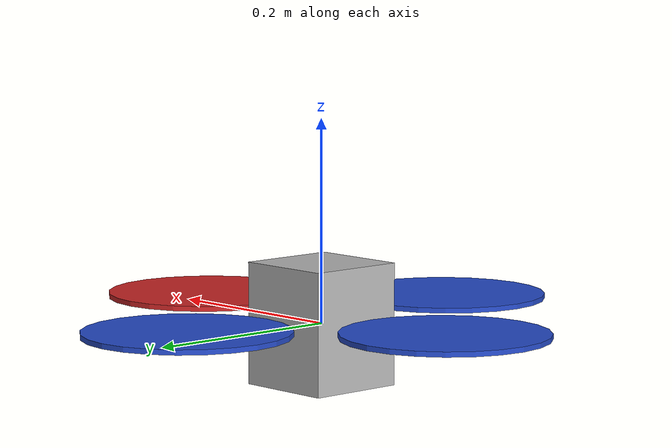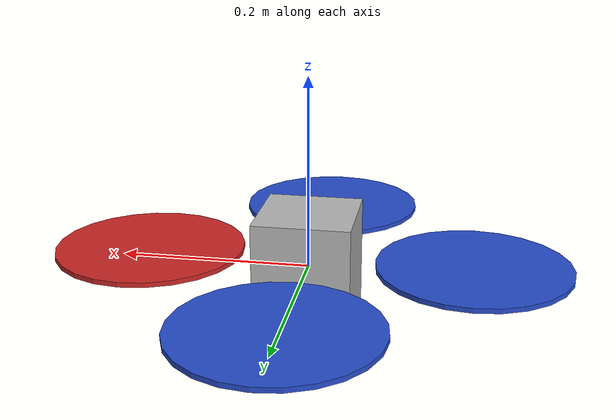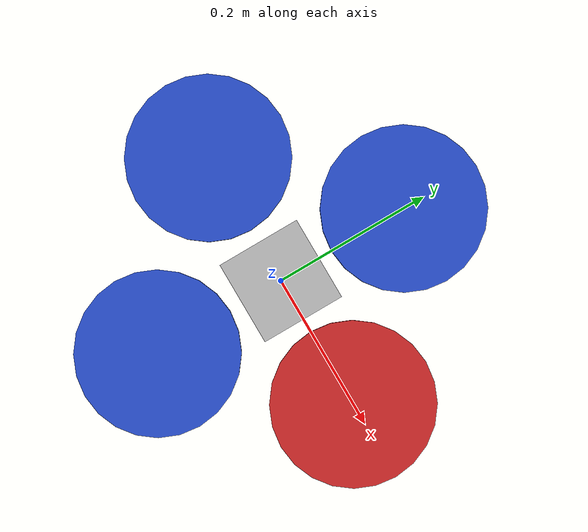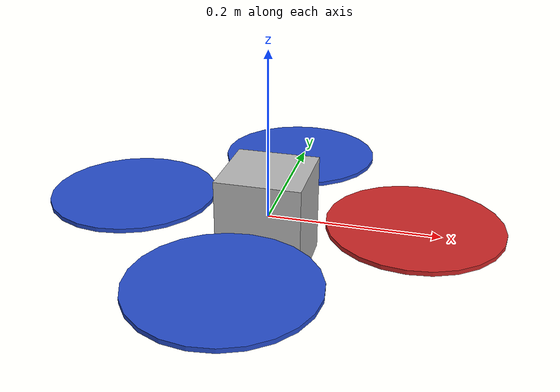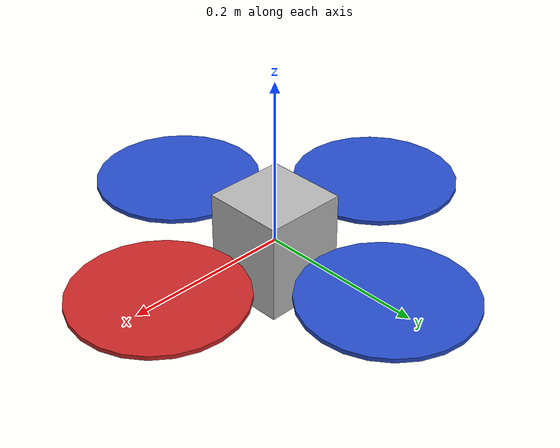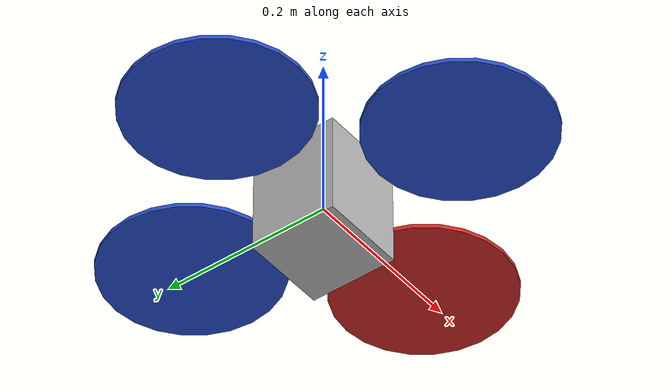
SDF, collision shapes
<sdf version='1.7'>
  <model name='hummingbird'>
    <link name='hummingbird/base_link'>
      <inertial>
        <pose>0 0 0 0 -0 0</pose>
        <mass>0.68</mass>
        <inertia>
          <ixx>0.007</ixx>
          <ixy>0</ixy>
          <ixz>0</ixz>
          <iyy>0.007</iyy>
          <iyz>0</iyz>
          <izz>0.012</izz>
        </inertia>
      </inertial>
      <collision name='hummingbird/base_link_inertia_collision'>
        <pose>0 0 0 0 -0 0</pose>
        <geometry>
          <box>
            <size>0.1 0.1 0.12</size>
          </box>
        </geometry>
      </collision>
      <visual name='hummingbird/base_link_inertia_visual'>
        <pose>0 0 0 0 -0 0</pose>
        <geometry>
          <mesh>
            <scale>1 1 1</scale>
            <uri>model://hummingbird/meshes/hummingbird.dae</uri>
          </mesh>
        </geometry>
      </visual>
    </link>
    <joint name='hummingbird/imu_joint' type='revolute'>
      <pose relative_to='hummingbird/base_link'>0 0 0 0 -0 0</pose>
      <parent>hummingbird/base_link</parent>
      <child>hummingbird/imu_link</child>
      <axis>
        <xyz>1 0 0</xyz>
        <limit>
          <lower>0</lower>
          <upper>0</upper>
          <effort>0</effort>
          <velocity>0</velocity>
        </limit>
        <dynamics>
          <spring_reference>0</spring_reference>
          <spring_stiffness>0</spring_stiffness>
        </dynamics>
      </axis>
    </joint>
    <link name='hummingbird/imu_link'>
      <pose relative_to='hummingbird/imu_joint'>0 0 0 0 -0 0</pose>
      <inertial>
        <pose>0 0 0 0 -0 0</pose>
        <mass>0.015</mass>
        <inertia>
          <ixx>1e-05</ixx>
          <ixy>0</ixy>
          <ixz>0</ixz>
          <iyy>1e-05</iyy>
          <iyz>0</iyz>
          <izz>1e-05</izz>
        </inertia>
      </inertial>
    </link>
    <joint name='hummingbird/rotor_0_joint' type='revolute'>
      <pose relative_to='hummingbird/base_link'>0.17 0 0.01 0 -0 0</pose>
      <parent>hummingbird/base_link</parent>
      <child>hummingbird/rotor_0</child>
      <axis>
        <xyz>0 0 1</xyz>
        <limit>
          <lower>-1e+16</lower>
          <upper>1e+16</upper>
        </limit>
        <dynamics>
          <spring_reference>0</spring_reference>
          <spring_stiffness>0</spring_stiffness>
        </dynamics>
      </axis>
    </joint>
    <link name='hummingbird/rotor_0'>
      <pose relative_to='hummingbird/rotor_0_joint'>0 0 0 0 -0 0</pose>
      <inertial>
        <pose>0 0 0 0 -0 0</pose>
        <mass>0.009</mass>
        <inertia>
          <ixx>1.755e-06</ixx>
          <ixy>0</ixy>
          <ixz>0</ixz>
          <iyy>7.50675e-05</iyy>
          <iyz>0</iyz>
          <izz>7.66875e-05</izz>
        </inertia>
      </inertial>
      <collision name='hummingbird/rotor_0_collision'>
        <pose>0 0 0 0 -0 0</pose>
        <geometry>
          <cylinder>
            <length>0.005</length>
            <radius>0.1</radius>
          </cylinder>
        </geometry>
        <surface>
          <contact>
            <ode/>
          </contact>
          <friction>
            <ode/>
          </friction>
        </surface>
      </collision>
      <visual name='hummingbird/rotor_0_visual'>
        <pose>0 0 0 0 -0 0</pose>
        <geometry>
          <mesh>
            <scale>0.1 0.1 0.1</scale>
            <uri>model://hummingbird/meshes/propeller_cw.dae</uri>
          </mesh>
        </geometry>
        <material>
          <script>
            <name>Gazebo/Red</name>
            <uri>file://media/materials/scripts/gazebo.material</uri>
          </script>
        </material>
      </visual>
    </link>
    <joint name='hummingbird/rotor_1_joint' type='revolute'>
      <pose relative_to='hummingbird/base_link'>0 0.17 0.01 0 -0 0</pose>
      <parent>hummingbird/base_link</parent>
      <child>hummingbird/rotor_1</child>
      <axis>
        <xyz>0 0 1</xyz>
        <limit>
          <lower>-1e+16</lower>
          <upper>1e+16</upper>
        </limit>
        <dynamics>
          <spring_reference>0</spring_reference>
          <spring_stiffness>0</spring_stiffness>
        </dynamics>
      </axis>
    </joint>
    <link name='hummingbird/rotor_1'>
      <pose relative_to='hummingbird/rotor_1_joint'>0 0 0 0 -0 0</pose>
      <inertial>
        <pose>0 0 0 0 -0 0</pose>
        <mass>0.009</mass>
        <inertia>
          <ixx>1.755e-06</ixx>
          <ixy>0</ixy>
          <ixz>0</ixz>
          <iyy>7.50675e-05</iyy>
          <iyz>0</iyz>
          <izz>7.66875e-05</izz>
        </inertia>
      </inertial>
      <collision name='hummingbird/rotor_1_collision'>
        <pose>0 0 0 0 -0 0</pose>
        <geometry>
          <cylinder>
            <length>0.005</length>
            <radius>0.1</radius>
          </cylinder>
        </geometry>
        <surface>
          <contact>
            <ode/>
          </contact>
          <friction>
            <ode/>
          </friction>
        </surface>
      </collision>
      <visual name='hummingbird/rotor_1_visual'>
        <pose>0 0 0 0 -0 0</pose>
        <geometry>
          <mesh>
            <scale>0.1 0.1 0.1</scale>
            <uri>model://hummingbird/meshes/propeller_ccw.dae</uri>
          </mesh>
        </geometry>
        <material>
          <script>
            <name>Gazebo/Blue</name>
            <uri>file://media/materials/scripts/gazebo.material</uri>
          </script>
        </material>
      </visual>
    </link>
    <joint name='hummingbird/rotor_2_joint' type='revolute'>
      <pose relative_to='hummingbird/base_link'>-0.17 0 0.01 0 -0 0</pose>
      <parent>hummingbird/base_link</parent>
      <child>hummingbird/rotor_2</child>
      <axis>
        <xyz>0 0 1</xyz>
        <limit>
          <lower>-1e+16</lower>
          <upper>1e+16</upper>
        </limit>
        <dynamics>
          <spring_reference>0</spring_reference>
          <spring_stiffness>0</spring_stiffness>
        </dynamics>
      </axis>
    </joint>
    <link name='hummingbird/rotor_2'>
      <pose relative_to='hummingbird/rotor_2_joint'>0 0 0 0 -0 0</pose>
      <inertial>
        <pose>0 0 0 0 -0 0</pose>
        <mass>0.009</mass>
        <inertia>
          <ixx>1.755e-06</ixx>
          <ixy>0</ixy>
          <ixz>0</ixz>
          <iyy>7.50675e-05</iyy>
          <iyz>0</iyz>
          <izz>7.66875e-05</izz>
        </inertia>
      </inertial>
      <collision name='hummingbird/rotor_2_collision'>
        <pose>0 0 0 0 -0 0</pose>
        <geometry>
          <cylinder>
            <length>0.005</length>
            <radius>0.1</radius>
          </cylinder>
        </geometry>
        <surface>
          <contact>
            <ode/>
          </contact>
          <friction>
            <ode/>
          </friction>
        </surface>
      </collision>
      <visual name='hummingbird/rotor_2_visual'>
        <pose>0 0 0 0 -0 0</pose>
        <geometry>
          <mesh>
            <scale>0.1 0.1 0.1</scale>
            <uri>model://hummingbird/meshes/propeller_cw.dae</uri>
          </mesh>
        </geometry>
        <material>
          <script>
            <name>Gazebo/Blue</name>
            <uri>file://media/materials/scripts/gazebo.material</uri>
          </script>
        </material>
      </visual>
    </link>
    <joint name='hummingbird/rotor_3_joint' type='revolute'>
      <pose relative_to='hummingbird/base_link'>0 -0.17 0.01 0 -0 0</pose>
      <parent>hummingbird/base_link</parent>
      <child>hummingbird/rotor_3</child>
      <axis>
        <xyz>0 0 1</xyz>
        <limit>
          <lower>-1e+16</lower>
          <upper>1e+16</upper>
        </limit>
        <dynamics>
          <spring_reference>0</spring_reference>
          <spring_stiffness>0</spring_stiffness>
        </dynamics>
      </axis>
    </joint>
    <link name='hummingbird/rotor_3'>
      <pose relative_to='hummingbird/rotor_3_joint'>0 0 0 0 -0 0</pose>
      <inertial>
        <pose>0 0 0 0 -0 0</pose>
        <mass>0.009</mass>
        <inertia>
          <ixx>1.755e-06</ixx>
          <ixy>0</ixy>
          <ixz>0</ixz>
          <iyy>7.50675e-05</iyy>
          <iyz>0</iyz>
          <izz>7.66875e-05</izz>
        </inertia>
      </inertial>
      <collision name='hummingbird/rotor_3_collision'>
        <pose>0 0 0 0 -0 0</pose>
        <geometry>
          <cylinder>
            <length>0.005</length>
            <radius>0.1</radius>
          </cylinder>
        </geometry>
        <surface>
          <contact>
            <ode/>
          </contact>
          <friction>
            <ode/>
          </friction>
        </surface>
      </collision>
      <visual name='hummingbird/rotor_3_visual'>
        <pose>0 0 0 0 -0 0</pose>
        <geometry>
          <mesh>
            <scale>0.1 0.1 0.1</scale>
            <uri>model://hummingbird/meshes/propeller_ccw.dae</uri>
          </mesh>
        </geometry>
        <material>
          <script>
            <name>Gazebo/Blue</name>
            <uri>file://media/materials/scripts/gazebo.material</uri>
          </script>
        </material>
      </visual>
    </link>
    <frame name='hummingbird/base_joint' attached_to='hummingbird/base_link'>
      <pose>0 0 0 0 -0 0</pose>
    </frame>
    <frame name='hummingbird/base_link_inertia' attached_to='hummingbird/base_joint'/>
  </model>
</sdf>
